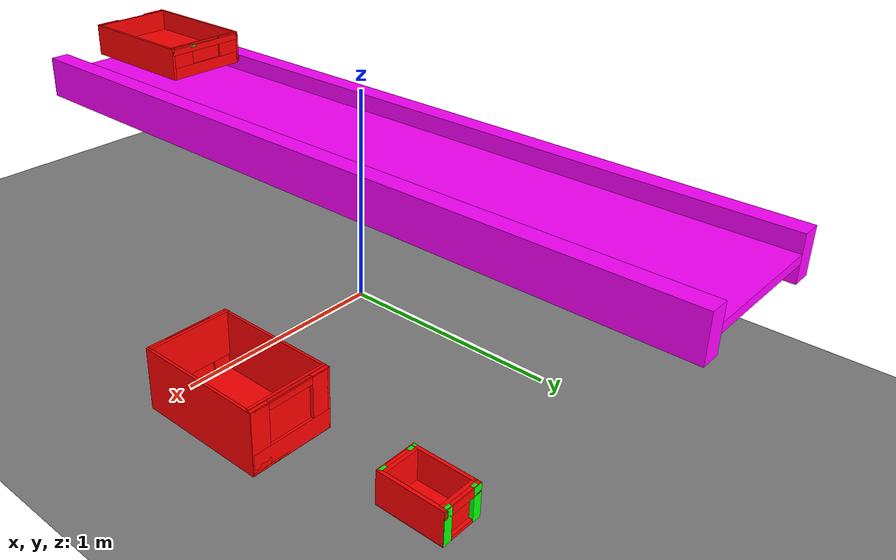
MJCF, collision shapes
<mujoco model="vccd_write">
    <compiler meshdir="../../meshes/carrying" angle="radian" eulerseq="zyx"/>
    <asset>
        <texture type="2d" name="groundplane" builtin="checker" mark="edge" rgb1="0.5 0.5 0.5" rgb2="0.5 0.5 0.5"
                markrgb="0.3 0.3 0.3" width="300" height="300"/>
        <material name="groundplane" texture="groundplane" texuniform="true" texrepeat="2 2"/>
        <material name="red_light" rgba="1.0 0.0 0.0 1.0" emission="1.0" />
        <material name="green_light" rgba="0.0 1.0 0.0 1.0" emission="1.0"/>
        <material name="yellow_light" rgba="1.0 1.0 0.0 1.0" emission="1.0" />
        <mesh name="carrying_table" file="carrying_table.stl" scale="1 1 1"/>
        <mesh name="big_box" file="big_box.stl" scale="0.001 0.001 0.001"/>
        <mesh name="middle_box" file="middle_box.stl" scale="0.001 0.001 0.001"/>
        <mesh name="small_box" file="smal_box.stl" scale="0.001 0.001 0.001"/>
    </asset>
    <visual>
        <headlight diffuse="1.2 1.2 1.2" ambient="0.3 0.3 0.3" specular="0 0 0"/>
        <rgba haze="0.15 0.25 0.35 1"/>
        <global azimuth="90" elevation="-20"/>
        <quality shadowsize="8192"/>
    </visual>
    <worldbody>
        <light pos="2.058333333 1.275 3" dir="0 0 -1" directional="false"   diffuse=".2 .2 .2"/>
        <light pos="-2.058333333 1.275 3" dir="0 0 -1" directional="false"  diffuse=".2 .2 .2"/>
        <light pos="2.058333333 -1.275 3" dir="0 0 -1" directional="false"  diffuse=".2 .2 .2"/>
        <light pos="-2.058333333 -1.275 3" dir="0 0 -1" directional="false" diffuse=".2 .2 .2"/>
        <light pos="-.225 1.5 3" dir="0 0 -1" directional="false"           diffuse=".2 .2 .2"/>
        <geom name="ground" pos="0 0 0" size="2.3 2.5 0.005" type="plane" material="groundplane" condim="1"/>
        <body name="carrying_table" pos="0 0 0" euler="0 0 0">
            <geom type="mesh" mesh="carrying_table" contype="0" conaffinity="0" euler="0 0 1.57" pos="0 0 0" rgba="1 1 1 1"/>
            <geom type="box" pos="0 0 0.737" size="0.3 1.8 0.02" rgba="1 0 1 1" friction="0.1 0.0 0.0"/>
            <geom type="box" pos="0.345 0 0.737" size="0.045 1.8 0.1" rgba="1 0 1 1" friction="0.1 0.0 0.0"/>
            <geom type="box" pos="-0.345 0 0.737" size="0.045 1.8 0.1" rgba="1 0 1 1" friction="0.1 0.0 0.0"/>
        </body>

        <body name="material_box" pos="0.8 0 0" euler="0 00 0">
        <joint type="free"/>
            <body name="big_box">
                <geom type="mesh" mesh="big_box" contype="0" conaffinity="0" euler="1.57 0 1.57" pos="0 0 0" rgba="1 1 0 1"/>
                <geom type="box" pos="0.005 0.295 0.1385" size="0.006 0.295 0.1385" rgba="1 0 0 1" friction="0.1 0.0 0.0"/>
                <geom type="box" pos="0.382 0.295 0.1385" size="0.006 0.295 0.1385" rgba="1 0 0 1" friction="0.1 0.0 0.0"/>
                <geom type="box" pos="0.19 0.295 0.005" size="0.19 0.295 0.006" rgba="1 0 0 1" friction="0.1 0.0 0.0"/>
                <body name="big_oneside" pos="0 0 0">
                    <geom type="box" pos="0.19 0.005 0.045" size="0.19 0.006 0.044" rgba="1 0 0 1" friction="0.1 0.0 0.0"/>
                    <geom type="box" pos="0.19 0.0025 0.258" size="0.19 0.0027 0.018" rgba="1 0 0 1" friction="0.1 0.0 0.0"/>
                    <geom type="box" pos="0.19 0.01 0.273" size="0.19 0.012 0.0029" rgba="1 0 0 1" friction="0.1 0.0 0.0"/>
                    <geom type="box" pos="0.342 0.009 0.1385" size="0.043 0.01 0.1385" rgba="1 0 0 1" friction="0.1 0.0 0.0"/>
                    <geom type="box" pos="0.043 0.009 0.1385" size="0.043 0.01 0.1385" rgba="1 0 0 1" friction="0.1 0.0 0.0"/>
                    <geom type="box" pos="0.107 0.009 0.257" size="0.025 0.005 0.018" rgba="0 0 1 1" friction="0.1 0.0 0.0"/>
                    <geom type="box" pos="0.278 0.009 0.257" size="0.025 0.005 0.018" rgba="0 0 1 1" friction="0.1 0.0 0.0"/>
                    <geom type="box" pos="0.19 0.02 0.18" size="0.19 0.006 0.1" rgba="1 0 0 1" friction="0.1 0.0 0.0"/>
                </body>
                <body name="big_otherside" pos="0 0.548 0">
                    <geom type="box" pos="0.19 0.036 0.045" size="0.19 0.006 0.044" rgba="1 0 0 1" friction="0.1 0.0 0.0"/>
                    <geom type="box" pos="0.19 0.038 0.258" size="0.19 0.0027 0.018" rgba="1 0 0 1" friction="0.1 0.0 0.0"/>
                    <geom type="box" pos="0.19 0.03 0.273" size="0.19 0.012 0.0029" rgba="1 0 0 1" friction="0.1 0.0 0.0"/>
                    <geom type="box" pos="0.342 0.032 0.1385" size="0.043 0.01 0.1385" rgba="1 0 0 1" friction="0.1 0.0 0.0"/>
                    <geom type="box" pos="0.043 0.032 0.1385" size="0.043 0.01 0.1385" rgba="1 0 0 1" friction="0.1 0.0 0.0"/>
                    <geom type="box" pos="0.107 0.031 0.257" size="0.025 0.005 0.018" rgba="0 0 1 1" friction="0.1 0.0 0.0"/>
                    <geom type="box" pos="0.278 0.031 0.257" size="0.025 0.005 0.018" rgba="0 0 1 1" friction="0.1 0.0 0.0"/>
                    <geom type="box" pos="0.19 0.02 0.18" size="0.19 0.006 0.1" rgba="1 0 0 1" friction="0.1 0.0 0.0"/>
                </body>
            </body>
            <body name="middle_box" pos="-0.9 -1.5 0.9">
                <geom type="mesh" mesh="middle_box" contype="0" conaffinity="0" euler="1.57 0 1.57" pos="0 0 0" rgba="1 1 0 1"/>
                <geom type="box" pos="0.005 0.295 0.073" size="0.006 0.295 0.075" rgba="1 0 0 1" friction="0.1 0.0 0.0"/>
                <geom type="box" pos="0.382 0.295 0.073" size="0.006 0.295 0.073" rgba="1 0 0 1" friction="0.1 0.0 0.0"/>
                <geom type="box" pos="0.19 0.295 0.025" size="0.19 0.295 0.027" rgba="1 0 0 1" friction="0.1 0.0 0.0"/>
                <body name="middle_oneside" pos="0 0 0">
                    <geom type="box" pos="0.194 0.0194 0.1" size="0.19 0.005 0.048" rgba="1 0 0 1" friction="0.1 0.0 0.0"/>
                    <geom type="box" pos="0.057 0.0073 0.1" size="0.057 0.0059 0.048" rgba="1 0 0 1" friction="0.1 0.0 0.0"/>
                    <geom type="box" pos="0.33 0.0073 0.1" size="0.057 0.0059 0.048" rgba="1 0 0 1" friction="0.1 0.0 0.0"/>
                    <geom type="box" pos="0.194 0.002 0.127" size="0.19 0.0032 0.014" rgba="1 0 0 1" friction="0.1 0.0 0.0"/>
                    <geom type="box" pos="0.121 0.008 0.1265" size="0.013 0.006 0.014" rgba="0 1 0 1" friction="0.1 0.0 0.0"/>
                    <geom type="box" pos="0.267 0.008 0.1265" size="0.013 0.006 0.014" rgba="0 1 0 1" friction="0.1 0.0 0.0"/>
                </body>
                <body name="middle_otherside" pos="0 0.556 0">
                    <geom type="box" pos="0.194 0.0194 0.1" size="0.19 0.005 0.048" rgba="1 0 0 1" friction="0.1 0.0 0.0"/>
                    <geom type="box" pos="0.057 0.028 0.1" size="0.057 0.0059 0.048" rgba="1 0 0 1" friction="0.1 0.0 0.0"/>
                    <geom type="box" pos="0.33 0.028 0.1" size="0.057 0.0059 0.048" rgba="1 0 0 1" friction="0.1 0.0 0.0"/>
                    <geom type="box" pos="0.194 0.0308 0.127" size="0.19 0.0032 0.014" rgba="1 0 0 1" friction="0.1 0.0 0.0"/>
                    <geom type="box" pos="0.121 0.028 0.1265" size="0.013 0.006 0.014" rgba="0 1 0 1" friction="0.1 0.0 0.0"/>
                    <geom type="box" pos="0.267 0.028 0.1265" size="0.013 0.006 0.014" rgba="0 1 0 1" friction="0.1 0.0 0.0"/>
                </body>
            </body>
            <body name="small_box" pos="0 1 0.15">
            <geom type="mesh" mesh="small_box" contype="0" conaffinity="0" euler="1.57 0 3.14" rgba="1 1 0 1"/>
            <geom type="box" pos="0.0975 0.148 -0.1417" size="0.0975 0.148 0.008" rgba="1 0 0 1" friction="0.1 0.0 0.0"/>
            <geom type="box" pos="0.188 0.148 -0.073" size="0.008 0.148 0.07375" rgba="1 0 0 1" friction="0.1 0.0 0.0"/>
            <geom type="box" pos="0.007 0.148 -0.073" size="0.008 0.148 0.07375" rgba="1 0 0 1" friction="0.1 0.0 0.0"/>
            <body name="small_otherside" pos="0 0 0">
                <geom type="box" pos="0.0975 0.0251 -0.073" size="0.0975 0.008 0.07375" rgba="1 0 0 1" friction="0.1 0.0 0.0"/>
                <geom type="box" pos="0.0975 0.0014 -0.0185" size="0.0975 0.0017 0.0195" rgba="1 0 0 1" friction="0.1 0.0 0.0"/>
                <geom type="box" pos="0.02 0.01 -0.073" size="0.02 0.01 0.07375" rgba="0 1 0 1" friction="0.1 0.0 0.0"/>
                <geom type="box" pos="0.175 0.01 -0.073" size="0.02 0.01 0.07375" rgba="0 1 0 1" friction="0.1 0.0 0.0"/>
                <geom type="box" pos="0.0975 0.013 -0.01143" size="0.0975 0.01 0.0115" rgba="1 0 0 1" friction="0.1 0.0 0.0"/>
            </body>
            <body name="small_oneside" pos="0 0.2477 0">
                <geom type="box" pos="0.0975 0.0251 -0.073" size="0.0975 0.008 0.07375" rgba="1 0 0 1" friction="0.1 0.0 0.0"/>
                <geom type="box" pos="0.0975 0.0485 -0.0185" size="0.0975 0.0017 0.0195" rgba="1 0 0 1" friction="0.1 0.0 0.0"/>
                <geom type="box" pos="0.02 0.0402 -0.073" size="0.02 0.01 0.07375" rgba="0 1 0 1" friction="0.1 0.0 0.0"/>
                <geom type="box" pos="0.175 0.0402 -0.073" size="0.02 0.01 0.07375" rgba="0 1 0 1" friction="0.1 0.0 0.0"/>
                <geom type="box" pos="0.0975 0.04 -0.01143" size="0.0975 0.01 0.0115" rgba="1 0 0 1" friction="0.1 0.0 0.0"/>
            </body>
            </body>
        </body>
    </worldbody>
</mujoco>
